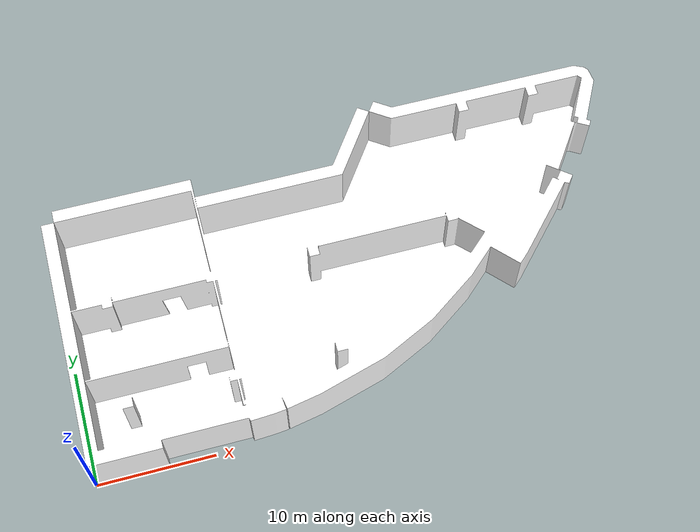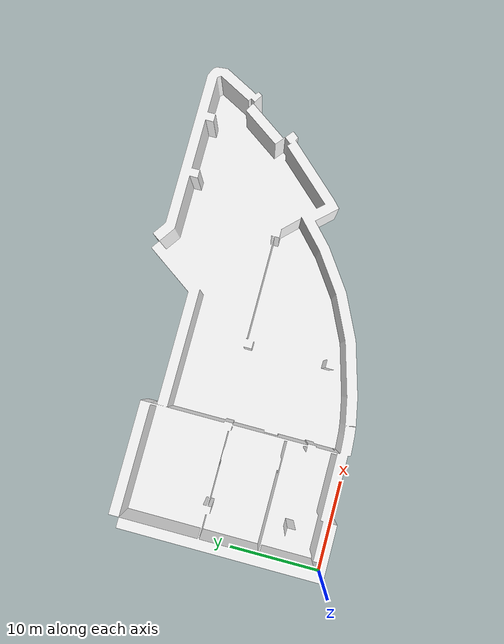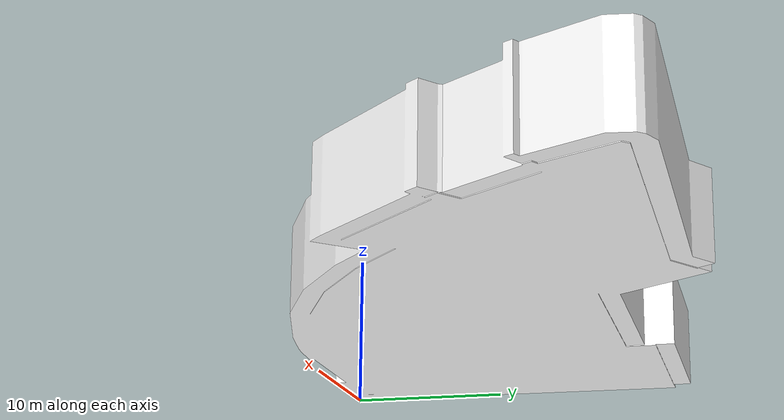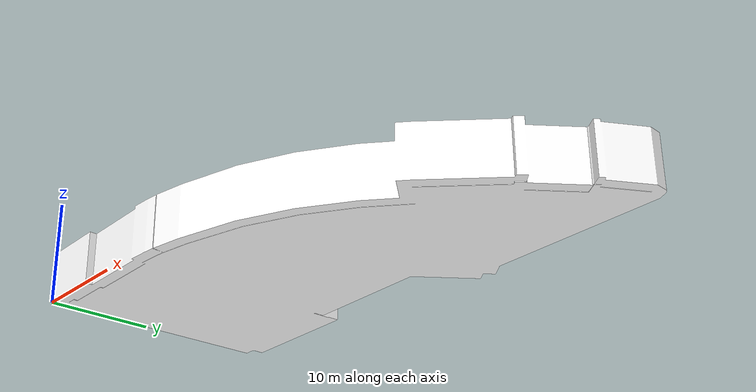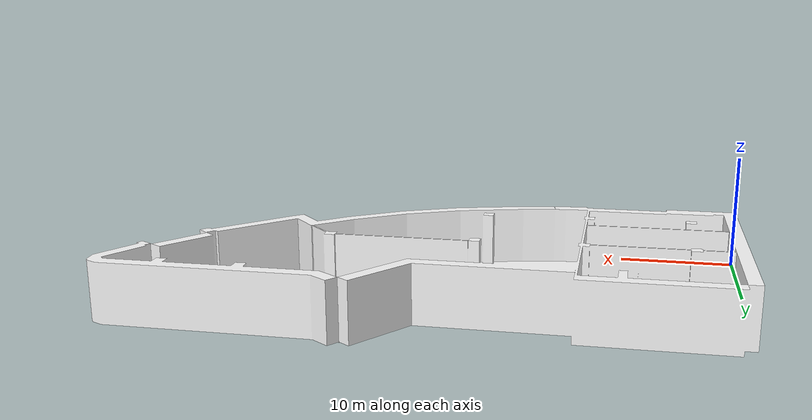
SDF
<?xml version='1.0'?>
<sdf version='1.6'>
  <model name='u005'>
<link name='link'>
      <self_collide>0</self_collide>
      <kinematic>0</kinematic>
      <visual name='link'>
        <geometry>
<mesh>
<uri>model://u005/meshes/base_link.STL </uri>
<scale>1 1 1</scale>

</mesh>

        </geometry>
        <material>
          <script>

            <uri>file://media/materials/scripts/construction.material</uri>
		<name> stainless </name>

          </script>
          <ambient>1 1 1 1</ambient>
          <diffuse>1 1 1 1</diffuse>
          <specular>0.2 0.2 0.2 1</specular>
          <emissive>0 0 0 1</emissive>
        </material>
        <cast_shadows>1</cast_shadows>
        <transparency>0</transparency>
      </visual>
      <collision name='Wall_84_Collision'>
        <laser_retro>0</laser_retro>
        <max_contacts>10</max_contacts>
        <geometry>

<mesh>
<uri>model://u005/meshes/base_link.STL </uri>
<scale>1 1 1</scale>
</mesh>

        </geometry>
        <surface>
          <friction>
            <ode>
              <mu>1</mu>
              <mu2>1</mu2>
              <fdir1>0 0 0</fdir1>
              <slip1>0</slip1>
              <slip2>0</slip2>
            </ode>
            <torsional>
              <coefficient>1</coefficient>
              <patch_radius>0</patch_radius>
              <surface_radius>0</surface_radius>
              <use_patch_radius>1</use_patch_radius>
              <ode>
                <slip>0</slip>
              </ode>
            </torsional>
          </friction>
          <bounce>
            <restitution_coefficient>0</restitution_coefficient>
            <threshold>1e+06</threshold>
          </bounce>
          <contact>
            <collide_without_contact>0</collide_without_contact>
            <collide_without_contact_bitmask>1</collide_without_contact_bitmask>
            <collide_bitmask>1</collide_bitmask>
            <ode>
              <soft_cfm>0</soft_cfm>
              <soft_erp>0.2</soft_erp>
              <kp>1e+13</kp>
              <kd>1</kd>
              <max_vel>0.01</max_vel>
              <min_depth>0</min_depth>
            </ode>
            <bullet><uri>model://stair/meshes/base_link.STL </uri>
<scale>1 1 1</scale>
              <split_impulse>1</split_impulse>
              <split_impulse_penetration_threshold>-0.01</split_impulse_penetration_threshold>
              <soft_cfm>0</soft_cfm>
              <soft_erp>0.2</soft_erp>
              <kp>1e+13</kp>
              <kd>1</kd>
            </bullet>
          </contact>
        </surface>
      </collision>
    </link>
</model>
</sdf>
